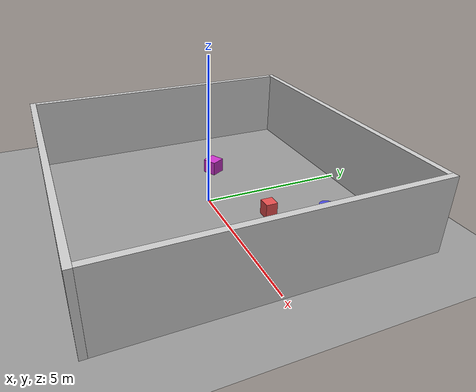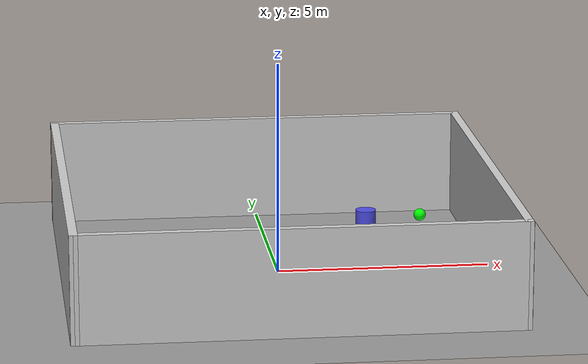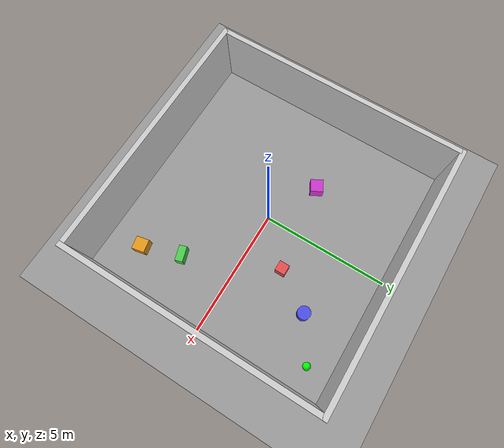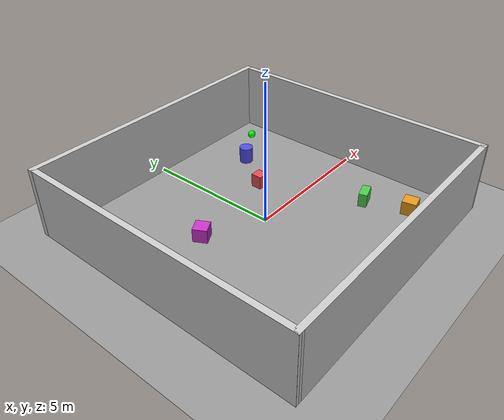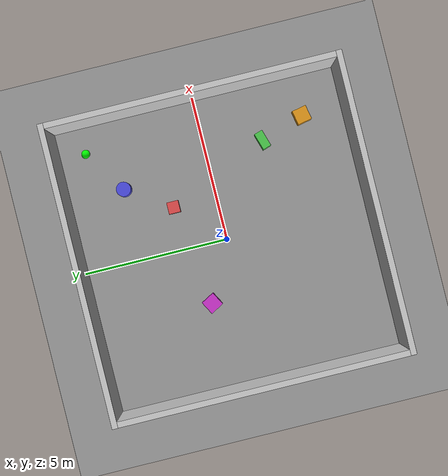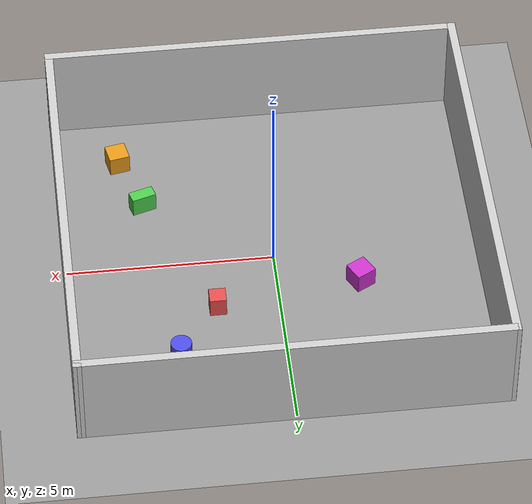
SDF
<?xml version="1.0"?>
<sdf version="1.8">
  <world name="room_world">
    <physics name="default" type="ode">
      <max_step_size>0.001</max_step_size>
      <real_time_factor>1.0</real_time_factor>
      <real_time_update_rate>1000</real_time_update_rate>
    </physics>

    <scene>
      <ambient>0.4 0.4 0.4 1</ambient>
      <background>0.7 0.7 0.8 1</background>
      <grid>true</grid>
    </scene>

    <light type="directional" name="sun">
      <pose>0 0 10 0 0 0</pose>
      <diffuse>0.8 0.8 0.8 1</diffuse>
      <specular>0.2 0.2 0.2 1</specular>
      <direction>-0.5 0.1 -1</direction>
    </light>

    <!-- Ground plane -->
    <model name="ground_plane">
      <static>true</static>
      <link name="link">
        <collision name="collision">
          <geometry>
            <plane>
              <normal>0 0 1</normal>
              <size>20 20</size>
            </plane>
          </geometry>
        </collision>
        <visual name="visual">
          <geometry>
            <plane>
              <normal>0 0 1</normal>
              <size>20 20</size>
            </plane>
          </geometry>
          <material>
            <ambient>0.4 0.4 0.4 1</ambient>
            <diffuse>0.6 0.6 0.6 1</diffuse>
            <specular>0.1 0.1 0.1 1</specular>
          </material>
        </visual>
      </link>
    </model>

    <!-- WALLS -->
    <!-- North wall -->
    <model name="wall_north">
      <static>true</static>
      <pose>0 5 1.25 0 0 0</pose>
      <link name="link">
        <collision name="collision">
          <geometry><box><size>10.2 0.2 2.5</size></box></geometry>
        </collision>
        <visual name="visual">
          <geometry><box><size>10.2 0.2 2.5</size></box></geometry>
          <material>
            <ambient>0.6 0.6 0.6 1</ambient>
            <diffuse>0.8 0.8 0.8 1</diffuse>
          </material>
        </visual>
      </link>
    </model>

    <!-- South wall -->
    <model name="wall_south">
      <static>true</static>
      <pose>0 -5 1.25 0 0 0</pose>
      <link name="link">
        <collision name="collision">
          <geometry><box><size>10.2 0.2 2.5</size></box></geometry>
        </collision>
        <visual name="visual">
          <geometry><box><size>10.2 0.2 2.5</size></box></geometry>
          <material>
            <ambient>0.6 0.6 0.6 1</ambient>
            <diffuse>0.8 0.8 0.8 1</diffuse>
          </material>
        </visual>
      </link>
    </model>

    <!-- East wall -->
    <model name="wall_east">
      <static>true</static>
      <pose>5 0 1.25 0 0 1.57</pose>
      <link name="link">
        <collision name="collision">
          <geometry><box><size>10.2 0.2 2.5</size></box></geometry>
        </collision>
        <visual name="visual">
          <geometry><box><size>10.2 0.2 2.5</size></box></geometry>
          <material>
            <ambient>0.6 0.6 0.6 1</ambient>
            <diffuse>0.8 0.8 0.8 1</diffuse>
          </material>
        </visual>
      </link>
    </model>

    <!-- West wall -->
    <model name="wall_west">
      <static>true</static>
      <pose>-5 0 1.25 0 0 1.57</pose>
      <link name="link">
        <collision name="collision">
          <geometry><box><size>10.2 0.2 2.5</size></box></geometry>
        </collision>
        <visual name="visual">
          <geometry><box><size>10.2 0.2 2.5</size></box></geometry>
          <material>
            <ambient>0.6 0.6 0.6 1</ambient>
            <diffuse>0.8 0.8 0.8 1</diffuse>
          </material>
        </visual>
      </link>
    </model>

    <!-- OBSTACLES -->
    <model name="obstacle_box_1">
      <static>true</static>
      <pose>1.5 1.5 0.25 0 0 0</pose>
      <link name="link">
        <collision name="collision">
          <geometry><box><size>0.4 0.4 0.5</size></box></geometry>
        </collision>
        <visual name="visual">
          <geometry><box><size>0.4 0.4 0.5</size></box></geometry>
          <material>
            <ambient>0.8 0.2 0.2 1</ambient>
            <diffuse>0.9 0.3 0.3 1</diffuse>
          </material>
        </visual>
      </link>
    </model>

    <model name="obstacle_box_2">
      <static>true</static>
      <pose>3.0 -2.0 0.25 0 0 0.3</pose>
      <link name="link">
        <collision name="collision">
          <geometry><box><size>0.6 0.3 0.5</size></box></geometry>
        </collision>
        <visual name="visual">
          <geometry><box><size>0.6 0.3 0.5</size></box></geometry>
          <material>
            <ambient>0.2 0.6 0.2 1</ambient>
            <diffuse>0.3 0.8 0.3 1</diffuse>
          </material>
        </visual>
      </link>
    </model>

    <model name="obstacle_cylinder">
      <static>true</static>
      <pose>2.5 3.0 0.3 0 0 0</pose>
      <link name="link">
        <collision name="collision">
          <geometry><cylinder><radius>0.25</radius><length>0.6</length></cylinder></geometry>
        </collision>
        <visual name="visual">
          <geometry><cylinder><radius>0.25</radius><length>0.6</length></cylinder></geometry>
          <material>
            <ambient>0.2 0.2 0.7 1</ambient>
            <diffuse>0.3 0.3 0.9 1</diffuse>
          </material>
        </visual>
      </link>
    </model>

    <model name="obstacle_box_3">
      <static>true</static>
      <pose>3.5 -3.5 0.25 0 0 0.2</pose>
      <link name="link">
        <collision name="collision">
          <geometry><box><size>0.5 0.5 0.5</size></box></geometry>
        </collision>
        <visual name="visual">
          <geometry><box><size>0.5 0.5 0.5</size></box></geometry>
          <material>
            <ambient>0.7 0.5 0.1 1</ambient>
            <diffuse>0.9 0.6 0.1 1</diffuse>
          </material>
        </visual>
      </link>
    </model>

    <model name="obstacle_box_4">
      <static>true</static>
      <pose>-2.0 1.0 0.25 0 0 0.5</pose>
      <link name="link">
        <collision name="collision">
          <geometry><box><size>0.5 0.5 0.5</size></box></geometry>
        </collision>
        <visual name="visual">
          <geometry><box><size>0.5 0.5 0.5</size></box></geometry>
          <material>
            <ambient>0.6 0.1 0.6 1</ambient>
            <diffuse>0.8 0.2 0.8 1</diffuse>
          </material>
        </visual>
      </link>
    </model>

    <!-- Goal marker -->
    <model name="goal_marker">
      <static>true</static>
      <pose>4.0 4.0 0.15 0 0 0</pose>
      <link name="link">
        <collision name="collision">
          <geometry><sphere><radius>0.15</radius></sphere></geometry>
        </collision>
        <visual name="visual">
          <geometry><sphere><radius>0.15</radius></sphere></geometry>
          <material>
            <ambient>0.0 0.8 0.0 1</ambient>
            <diffuse>0.0 1.0 0.0 1</diffuse>
          </material>
        </visual>
      </link>
    </model>

  </world>
</sdf>
